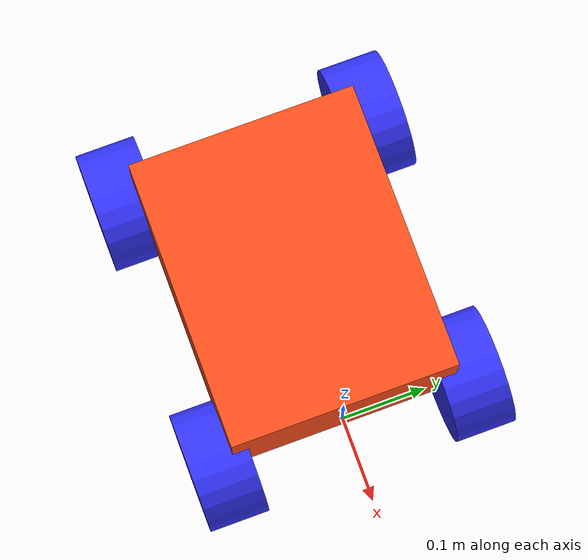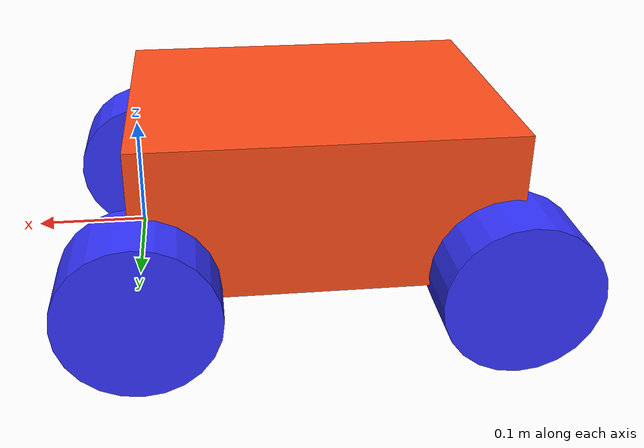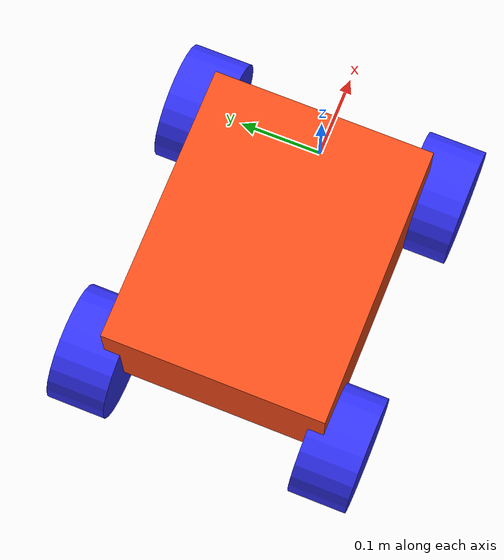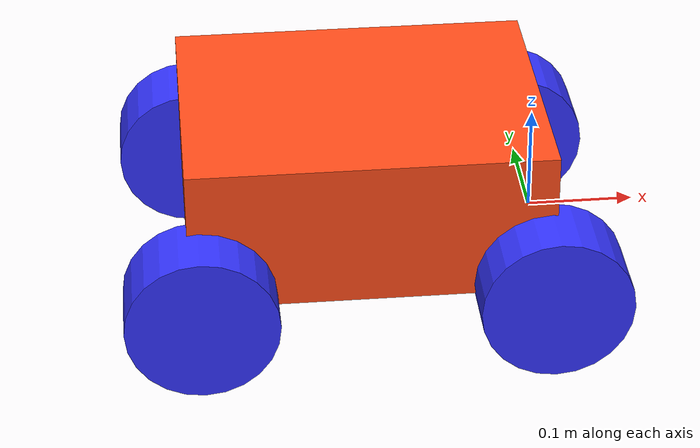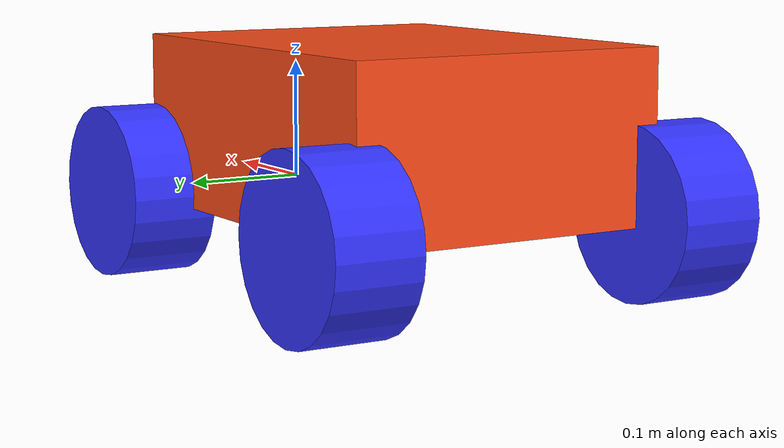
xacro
<?xml version="1.0"?>
<robot xmlns:xacro="http://www.ros.org/wiki/xacro" >

    <xacro:include filename="inertial_macros.xacro"/>

    <xacro:property name="chassis_length" value="0.335"/>
    <xacro:property name="chassis_width" value="0.265"/>
    <xacro:property name="chassis_height" value="0.138"/>
    <xacro:property name="chassis_mass" value="1.0"/>
    <xacro:property name="wheel_radius" value="0.07"/>
    <xacro:property name="wheel_thickness" value="0.07"/>
    <xacro:property name="wheel_mass" value="0.2"/>
    <xacro:property name="wheel_offset_x" value="0.33"/>
    <xacro:property name="wheel_offset_y" value="0.1485"/>
    <xacro:property name="wheel_offset_z" value="0.01"/>
    <xacro:property name="caster_wheel_radius" value="0.01"/>
    <xacro:property name="caster_wheel_mass" value="0.01"/>
    <xacro:property name="caster_wheel_offset_x" value="0.075"/>
    <xacro:property name="caster_wheel_offset_z" value="${wheel_offset_z - wheel_radius + caster_wheel_radius}"/>

    <material name="white">
        <color rgba="1 1 1 1" />
    </material>

    <material name="orange">
        <color rgba="1 0.3 0.1 1"/>
    </material>

    <material name="blue">
        <color rgba="0.2 0.2 1 1"/>
    </material>

    <material name="black">
        <color rgba="0 0 0 1"/>
    </material>

    <material name="red">
        <color rgba="1 0 0 1"/>
    </material>

    <!-- BASE LINK -->

    <link name="base_link">

    </link>

    <!-- BASE_FOOTPRINT LINK -->

    <joint name="base_footprint_joint" type="fixed">
        <parent link="base_link"/>
        <child link="base_footprint"/>
        <origin xyz="0 0 0" rpy="0 0 0"/>
    </joint>

    <link name="base_footprint">
    </link>

    <!-- CHASSIS LINK -->

    <joint name="chassis_joint" type="fixed">
        <parent link="base_link"/>
        <child link="chassis"/>
        <origin xyz="${-wheel_offset_x} 0 ${-wheel_offset_z}"/>
    </joint>

    <link name="chassis">
        <visual>
            <origin xyz="${chassis_length/2} 0 ${chassis_height/2}"/>
            <geometry>
                <box size="${chassis_length} ${chassis_width} ${chassis_height}"/>
            </geometry>
            <material name="orange"/>
        </visual>
        <collision>
            <origin xyz="${chassis_length/2} 0 ${chassis_height/2}"/>
            <geometry>
                <box size="${chassis_length} ${chassis_width} ${chassis_height}"/>
            </geometry>
        </collision>
        <xacro:inertial_box mass="0.5" x="${chassis_length}" y="${chassis_width}" z="${chassis_height}">
            <origin xyz="${chassis_length/2} 0 ${chassis_height/2}" rpy="0 0 0"/>
        </xacro:inertial_box>
    </link>

    <gazebo reference="chassis">
        <material>Gazebo/Orange</material>
    </gazebo>

    <!-- LEFT WHEEL LINK -->

    <joint name="left_wheel_joint" type="continuous">
        <parent link="base_link"/>
        <child link="left_wheel"/>
        <origin xyz="0 ${wheel_offset_y} 0" rpy="-${pi/2} 0 0" />
        <axis xyz="0 0 1"/>
    </joint>

    <link name="left_wheel">
        <visual>
            <geometry>
                <cylinder radius="${wheel_radius}" length="${wheel_thickness}"/>
            </geometry>
            <material name="blue"/>
        </visual>
        <collision>
            <geometry>
                <sphere radius="${wheel_radius}"/>
            </geometry>
        </collision>
        <xacro:inertial_cylinder mass="${wheel_mass}" length="${wheel_thickness}" radius="${wheel_radius}">
            <origin xyz="0 0 0" rpy="0 0 0"/>
        </xacro:inertial_cylinder>
    </link>

    <gazebo reference="left_wheel">
        <material>Gazebo/Blue</material>
    </gazebo>

    <!-- RIGHT WHEEL LINK -->

    <joint name="right_wheel_joint" type="continuous">
        <parent link="base_link"/>
        <child link="right_wheel"/>
        <origin xyz="0 ${-wheel_offset_y} 0" rpy="${pi/2} 0 0" />
        <axis xyz="0 0 -1"/>
    </joint>

    <link name="right_wheel">
        <visual>
            <geometry>
                <cylinder radius="${wheel_radius}" length="${wheel_thickness}"/>
            </geometry>
            <material name="blue"/>
        </visual>
        <collision>
            <geometry>
                <sphere radius="${wheel_radius}"/>
            </geometry>
        </collision>
        <xacro:inertial_cylinder mass="${wheel_mass}" length="${wheel_thickness}" radius="${wheel_radius}">
            <origin xyz="0 0 0" rpy="0 0 0"/>
        </xacro:inertial_cylinder>
    </link>

    <gazebo reference="right_wheel">
        <material>Gazebo/Blue</material>
    </gazebo>

    <!-- CASTER RIGHT WHEEL LINK -->

    <joint name="caster_right_joint" type="fixed">
        <parent link="chassis"/>
        <child link="caster_right"/>
        <origin xyz="0.01 ${-wheel_offset_y} 0.01" rpy="${pi/2} 0 0" />
        <axis xyz="0 0 -1"/>
    </joint>

    <link name="caster_right">
        <visual>
            <geometry>
                <cylinder radius="${wheel_radius}" length="${wheel_thickness}"/>
            </geometry>
            <material name="blue"/>
        </visual>
        <collision>
            <geometry>
                <sphere radius="${wheel_radius}"/>
            </geometry>
        </collision>
        <xacro:inertial_sphere mass="${wheel_mass}" radius="${wheel_radius}">
            <origin xyz="0 0 0" rpy="0 0 0"/>
        </xacro:inertial_sphere>
    </link>

    <gazebo reference="caster_right">
        <material>Gazebo/Blue</material>
        <mu1 value="0.001"/>
        <mu2 value="0.001"/>
    </gazebo>

       <!-- CASTER LEFT WHEEL LINK -->

       <joint name="caster_left_joint" type="fixed">
        <parent link="chassis"/>
        <child link="caster_left"/>
        <origin xyz="0.01 ${wheel_offset_y} 0.01" rpy="${pi/2} 0 0" />
        <axis xyz="0 0 1"/>
    </joint>

    <link name="caster_left">
        <visual>
            <geometry>
                <cylinder radius="${wheel_radius}" length="${wheel_thickness}"/>
            </geometry>
            <material name="blue"/>
        </visual>
        <collision>
            <geometry>
                <sphere radius="${wheel_radius}"/>
            </geometry>
        </collision>
        <xacro:inertial_sphere mass="${wheel_mass}" radius="${wheel_radius}">
            <origin xyz="0 0 0" rpy="0 0 0"/>
        </xacro:inertial_sphere>
    </link>

    <gazebo reference="caster_left">
        <material>Gazebo/Blue</material>
        <mu1 value="0.001"/>
        <mu2 value="0.001"/>
    </gazebo>

</robot>
